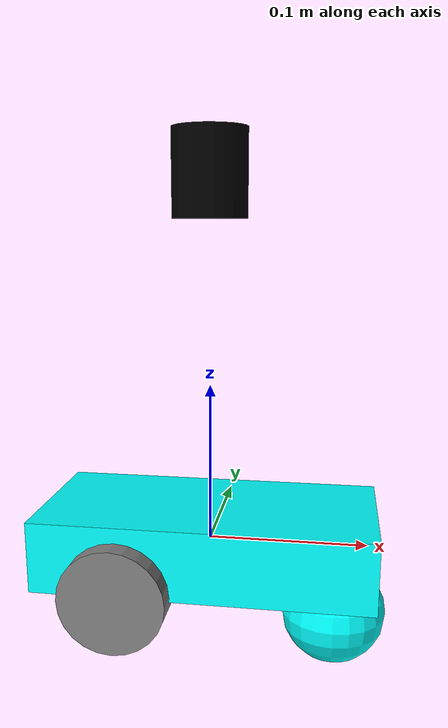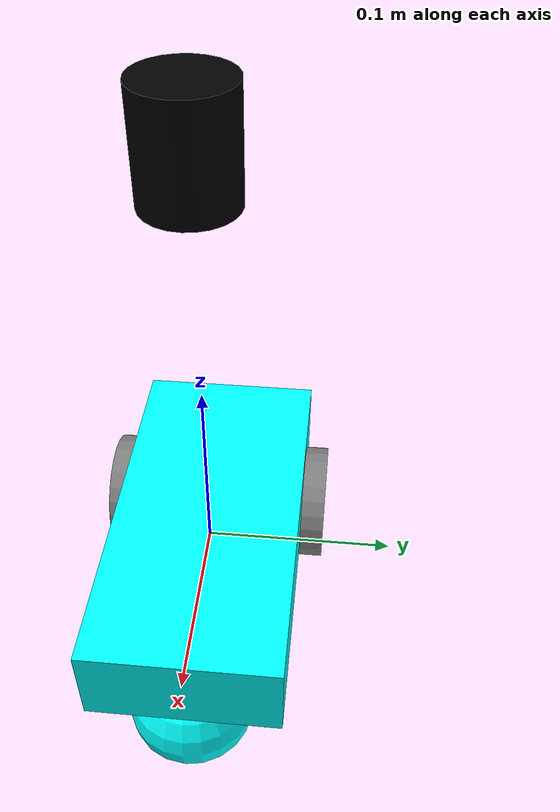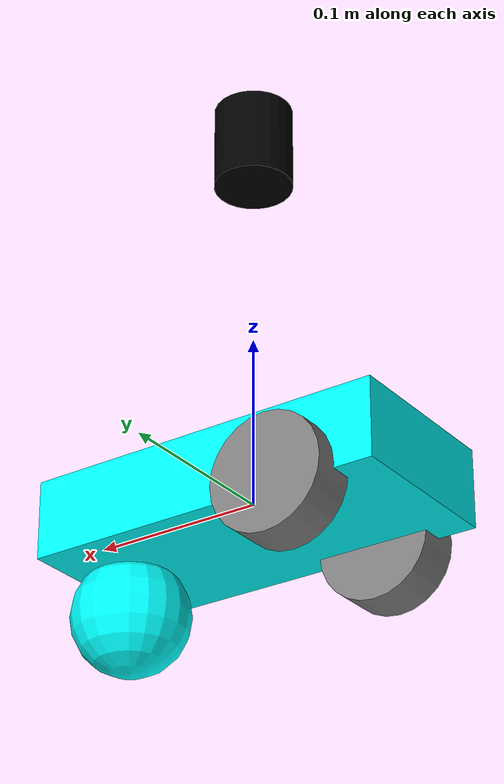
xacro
<?xml version="1.0"?>
<robot name="hadabot" xmlns:xacro="http://ros.org/wiki/xacro">
  <xacro:property name="base_width" value="0.1"/>
  <xacro:property name="base_length" value="0.21"/>
  <xacro:property name="base_height" value="0.045"/>

  <xacro:property name="wheel_radius" value="0.033"/>
  <xacro:property name="wheel_width" value="0.026"/>
  <xacro:property name="wheel_ygap" value="0.0"/>
  <xacro:property name="wheel_zoff" value="0.02"/>
  <xacro:property name="wheel_xoff" value="0.05"/>

  <xacro:property name="caster_xoff" value="0.08"/>

    <!-- Define intertial property macros  -->
  <xacro:macro name="box_inertia" params="m w h d">
    <inertial>
      <origin xyz="0 0 0" rpy="${pi/2} 0 ${pi/2}"/>
      <mass value="${m}"/>
      <inertia ixx="${(m/12) * (h*h + d*d)}" ixy="0.0" ixz="0.0" iyy="${(m/12) * (w*w + d*d)}" iyz="0.0" izz="${(m/12) * (w*w + h*h)}"/>
    </inertial>
  </xacro:macro>

  <xacro:macro name="cylinder_inertia" params="m r h">
    <inertial>
      <origin xyz="0 0 0" rpy="${pi/2} 0 0" />
      <mass value="${m}"/>
      <inertia ixx="${(m/12) * (3*r*r + h*h)}" ixy = "0" ixz = "0" iyy="${(m/12) * (3*r*r + h*h)}" iyz = "0" izz="${(m/2) * (r*r)}"/>
    </inertial>
  </xacro:macro>

  <xacro:macro name="sphere_inertia" params="m r">
    <inertial>
      <mass value="${m}"/>
      <inertia ixx="${(2/5) * m * (r*r)}" ixy="0.0" ixz="0.0" iyy="${(2/5) * m * (r*r)}" iyz="0.0" izz="${(2/5) * m * (r*r)}"/>
    </inertial>
  </xacro:macro>

    <!-- Robot Base -->
  <link name="base_link">
    <visual>
      <geometry>
        <box size="${base_length} ${base_width} ${base_height}"/>
      </geometry>
      <material name="Cyan">
        <color rgba="0 1.0 1.0 1.0"/>
      </material>
    </visual>

        <collision>
      <geometry>
        <box size="${base_length} ${base_width} ${base_height}"/>
      </geometry>
    </collision>

    <xacro:box_inertia m="15" w="${base_width}" d="${base_length}" h="${base_height}"/>

  </link>

    <!-- Robot Footprint -->
  <link name="base_footprint"/>

  <joint name="base_joint" type="fixed">
    <parent link="base_link"/>
    <child link="base_footprint"/>
    <origin xyz="0.0 0.0 ${-(wheel_radius+wheel_zoff)}" rpy="0 0 0"/>
  </joint>

    <!-- Wheels -->
  <xacro:macro name="wheel" params="prefix x_reflect y_reflect">
    <link name="${prefix}_link">
    <collision>
        <origin xyz="0 0 0" rpy="${pi/2} 0 0"/>
        <geometry>
          <cylinder radius="${wheel_radius}" length="${wheel_width}"/>
        </geometry>
      </collision>

      <xacro:cylinder_inertia m="0.5" r="${wheel_radius}" h="${wheel_width}"/>
      <visual>
        <origin xyz="0 0 0" rpy="${pi/2} 0 0"/>
        <geometry>
            <cylinder radius="${wheel_radius}" length="${wheel_width}"/>
        </geometry>
        <material name="Gray">
          <color rgba="0.5 0.5 0.5 1.0"/>
        </material>
      </visual>
    </link>

    <joint name="${prefix}_joint" type="continuous">
      <parent link="base_link"/>
      <child link="${prefix}_link"/>
      <origin xyz="${x_reflect*wheel_xoff} ${y_reflect*(base_width/2+wheel_ygap)} ${-wheel_zoff}" rpy="0 0 0"/>
      <axis xyz="0 1 0"/>
    </joint>
  </xacro:macro>

  <xacro:wheel prefix="drivewhl_l" x_reflect="-1" y_reflect="1" />
  <xacro:wheel prefix="drivewhl_r" x_reflect="-1" y_reflect="-1" />

    <!-- Caster Wheel -->
  <link name="front_caster">
    <visual>
      <geometry>
        <sphere radius="${(wheel_radius)}"/>
      </geometry>
      <material name="Cyan">
        <color rgba="0 1.0 1.0 1.0"/>
      </material>
    </visual>

    <collision>
      <origin xyz="0 0 0" rpy="0 0 0"/>
      <geometry>
        <sphere radius="${(wheel_radius+wheel_zoff-(base_height/2))}"/>
      </geometry>
    </collision>

    <xacro:sphere_inertia m="0.5" r="${(wheel_radius+wheel_zoff-(base_height/2))}"/>

  </link>

  <joint name="caster_joint" type="fixed">
    <parent link="base_link"/>
    <child link="front_caster"/>
    <origin xyz="${caster_xoff} 0.0 ${-(base_height)}" rpy="0 0 0"/>
  </joint>

    <!-- Robot Lidar -->
  <link name="laser">
    <visual>
      <origin xyz="0 0 0.0255" rpy="0 0 0" />
      <geometry>
        <cylinder radius="0.0225" length="0.051"/>
      </geometry>
      <material name="black">
        <color rgba="0 0 0 1" />
      </material>
    </visual>
  </link>

  <joint name="lidar_joint" type="fixed">
    <parent link="base_link"/>
    <child link="laser"/>
    <origin xyz="0.0 0 0.20" rpy="0 0 0" />
  </joint>

</robot>
